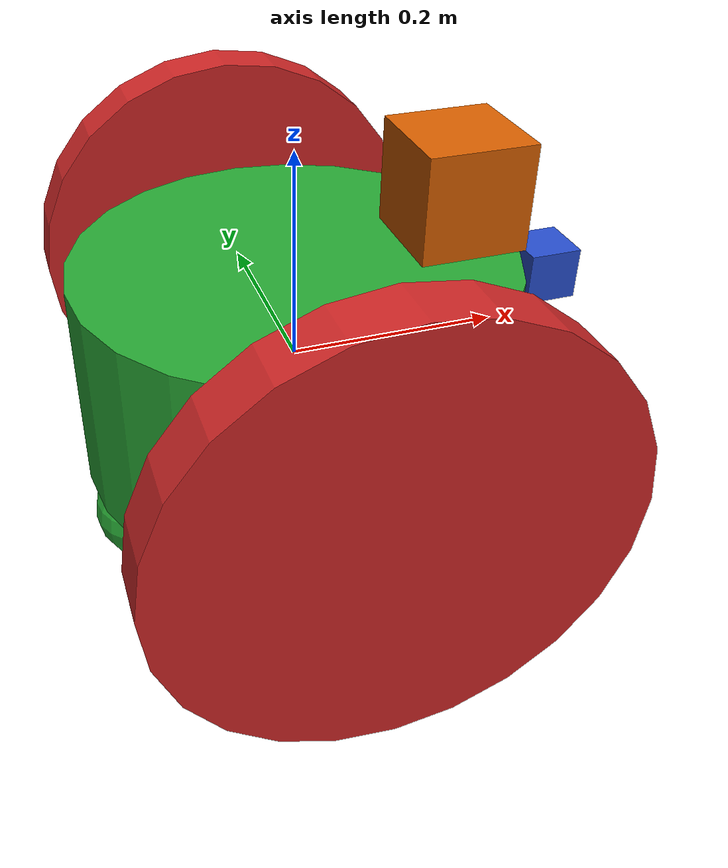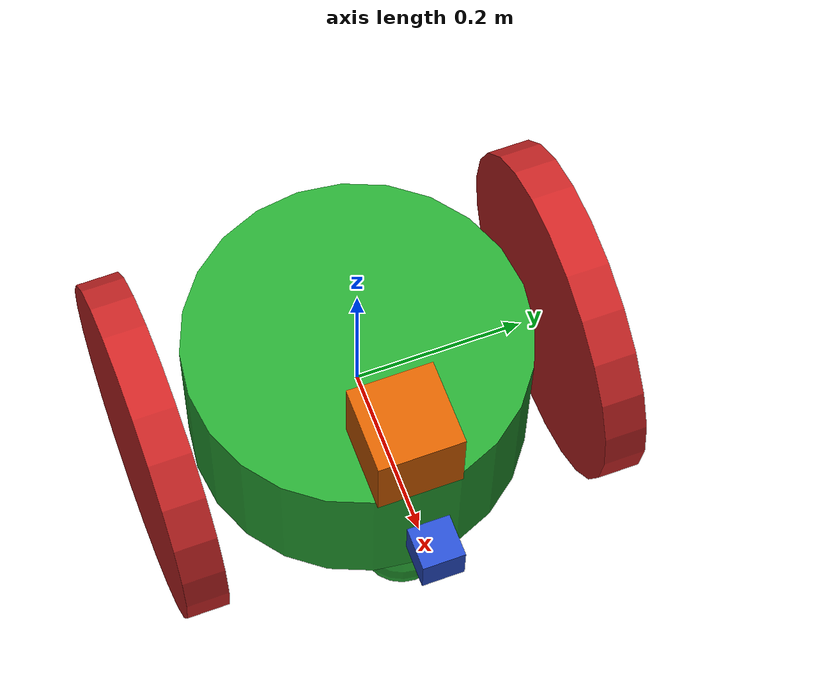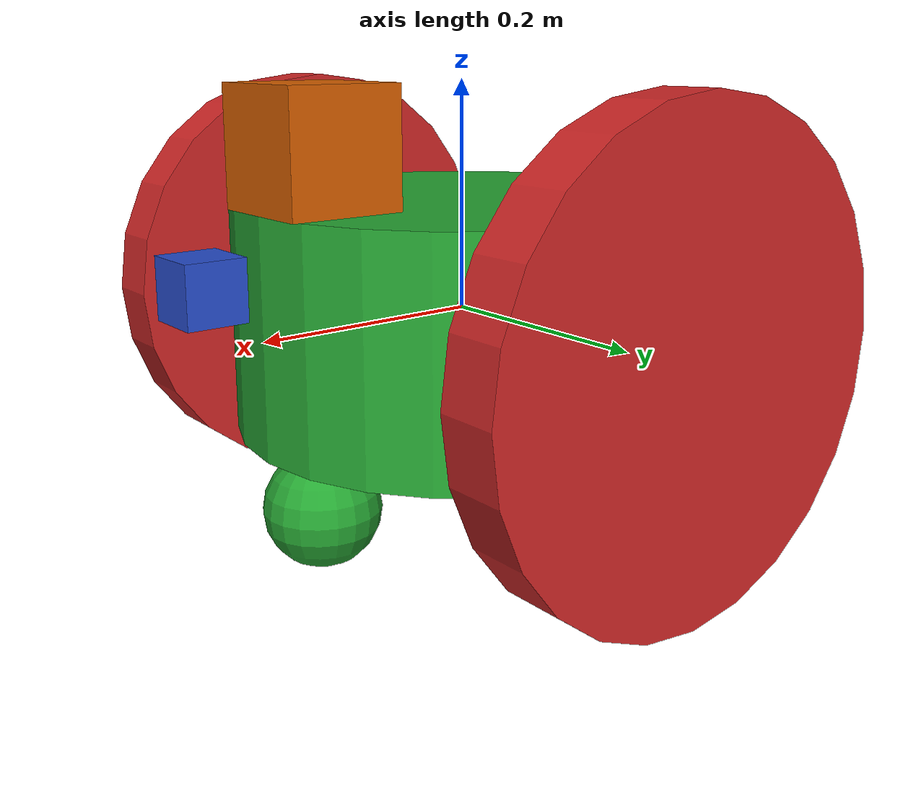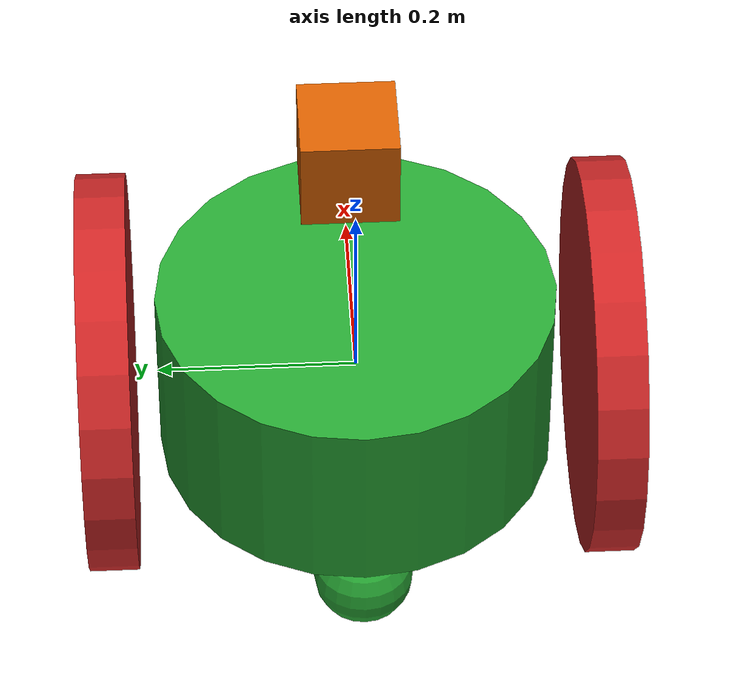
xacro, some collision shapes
<robot name="robot1" xmlns:xacro="http://www.ros.org/wiki/xacro">

  <xacro:include filename="$(find my_robot)/urdf/robot1.gazebo" />

  <link name="robot_footprint"></link>

  <joint name="robot_footprint_joint" type="fixed">
    <origin xyz="0 0 0" rpy="0 0 0" />
    <parent link="robot_footprint" />
    <child link="chassis" />
  </joint>

  <link name='chassis'>
    <pose> 0 0 0.2 0 0 0</pose>

    <inertial>
      <mass value="15.0"/>
      <origin xyz="0.0 0 0" rpy=" 0 0 0"/>
      <inertia
        ixx="0.1" ixy="0" ixz="0"
        iyy="0.1" iyz="0"
        izz="0.1"
      />
    </inertial>

    <collision name='collision'>
      <origin xyz="0 0 0" rpy=" 0 0 0"/>
      <geometry>
        <cylinder length="0.2" radius="0.2"/>
      </geometry>
    </collision>

    <visual name='chassis_visual'>
      <origin xyz="0 0 0" rpy=" 0 0 0"/>
      <geometry>
        <cylinder length="0.2" radius="0.2"/>
      </geometry>
    </visual>

    <collision name='back_caster_collision'>
      <origin xyz="-0.15 0 -0.15" rpy=" 0 0 0"/>
      <geometry>
        <sphere radius="0.0499"/>
      </geometry>
    </collision>

    <visual name='back_caster_visual'>
      <origin xyz="-0.15 0 -0.15" rpy=" 0 0 0"/>
      <geometry>
        <sphere radius="0.05"/>
      </geometry>
    </visual>

    <collision name='front_caster_collision'>
      <origin xyz="0.15 0 -0.15" rpy=" 0 0 0"/>
      <geometry>
        <sphere radius="0.0499"/>
      </geometry>
    </collision>

    <visual name='front_caster_visual'>
      <origin xyz="0.15 0 -0.15" rpy=" 0 0 0"/>
      <geometry>
        <sphere radius="0.05"/>
      </geometry>
    </visual>

  </link>

  <link name='left_wheel'>

    <inertial>
      <mass value="5.0"/>
      <origin xyz="0 0 0" rpy=" 0 1.5707 1.5707"/>
      <inertia
        ixx="0.1" ixy="0" ixz="0"
        iyy="0.1" iyz="0"
        izz="0.1"
      />
    </inertial>

    <collision name='left_wheel_collision'>
      <origin xyz="0 0 0" rpy=" 0 1.5707 1.5707"/>
      <geometry>
        <cylinder length="0.05" radius="0.2"/>
      </geometry>
    </collision>

    <visual name='left_wheel_visual'>
      <origin xyz="0 0 0" rpy=" 0 1.5707 1.5707"/>
      <geometry>
        <cylinder length="0.05" radius="0.2"/>
      </geometry>
    </visual>

  </link>

  <joint type="continuous" name="left_wheel_hinge">
    <origin xyz="0 0.25 0" rpy="0 0 0"/>
    <child link="left_wheel"/>
    <parent link="chassis"/>
    <axis xyz="0 1 0" rpy="0 0 0"/>
    <limit effort="10000" velocity="1000"/>
    <dynamics damping="1.0" fiction="1.0"/>
    <commandTopic>cmd_vel</commandTopic>
  </joint>

  <link name='right_wheel'>

    <inertial>
      <mass value="5.0"/>
      <origin xyz="0 0 0" rpy=" 0 1.5707 1.5707"/>
      <inertia
        ixx="0.1" ixy="0" ixz="0"
        iyy="0.1" iyz="0"
        izz="0.1"
      />
    </inertial>

    <collision name='right_wheel_collision'>
      <origin xyz="0 0 0" rpy=" 0 1.5707 1.5707"/>
      <geometry>
        <cylinder length="0.05" radius="0.2"/>
      </geometry>
    </collision>

    <visual name='right_wheel_visual'>
      <origin xyz="0 0 0" rpy=" 0 1.5707 1.5707"/>
      <geometry>
        <cylinder length="0.05" radius="0.2"/>
      </geometry>
    </visual>

  </link>

  <joint type="continuous" name="right_wheel_hinge">
    <origin xyz="0 -0.25 0" rpy="0 0 0"/>
    <child link="right_wheel"/>
    <parent link="chassis"/>
    <axis xyz="0 1 0" rpy="0 0 0"/>
    <limit effort="10000" velocity="1000"/>
    <dynamics damping="1.0" fiction="1.0"/>
    <commandTopic>cmd_vel</commandTopic>
  </joint>

  <link name='camera'>

    <inertial>
      <mass value="1.0"/>
      <origin xyz="0 0 0" rpy=" 0 0 0"/>
      <box_inertia m="0.1" x="0.05" y="0.05" z="0.05"/>
      <inertia
        ixx="0.000001" ixy="0" ixz="0"
        iyy="0.000001" iyz="0"
        izz="0.000001"
      />
    </inertial>

    <collision name='camera_collision'>
      <origin xyz="0 0 0" rpy=" 0 0 0"/>
      <geometry>
        <box size="0.05 0.05 0.05"/>
      </geometry>
    </collision>

    <visual name='camera_visual'>
      <origin xyz="0 0 0" rpy=" 0 0 0"/>
      <geometry>
        <box size="0.05 0.05 0.05"/>
      </geometry>
    </visual>

  </link>

  <joint type="fixed" name="camera_joint">
    <origin xyz="0.25 0 0.05" rpy="0 0 0"/>
    <child link="camera"/>
    <parent link="chassis"/>
    <axis xyz="0 1 0"/>
    <imageTopicName>rgb/image_raw</imageTopicName>
  </joint>

  <link name='hokuyo'>

    <inertial>
      <mass value="0.00001"/>
      <origin xyz="0 0 0" rpy=" 0 0 0"/>
      <box_inertia m="0.1" x="0.05" y="0.05" z="0.05"/>
      <inertia
        ixx="0.000001" ixy="0" ixz="0"
        iyy="0.000001" iyz="0"
        izz="0.000001"
      />
    </inertial>

    <collision name='hokuyo_collision'>
      <origin xyz="0 0 0" rpy=" 0 0 0"/>
      <geometry>
        <box size="0.1 0.1 0.1"/>
      </geometry>
    </collision>

    <visual name='hokuyo_visual'>
      <origin xyz="0 0 0" rpy=" 0 0 0"/>
      <geometry>
        <mesh filename="package://my_robot/meshes/hokuyo.dae"/>
      </geometry>
    </visual>

    <topicName>/scan</topicName>

  </link>

  <joint type="fixed" name="hokuyo_joint">
    <origin xyz="0.15 0 0.15" rpy="0 0 0"/>
    <child link="hokuyo"/>
    <parent link="chassis"/>
    <axis xyz="0 1 0"/>
  </joint>

  <gazebo reference="left_wheel">
    <material>Gazebo/Red</material>
  </gazebo>

  <gazebo reference="right_wheel">
    <material>Gazebo/Red</material>
  </gazebo>

  <gazebo reference="chassis">
    <material>Gazebo/Green</material>
  </gazebo>

  <gazebo reference="camera">
    <material>Gazebo/Blue</material>
  </gazebo>

</robot>
